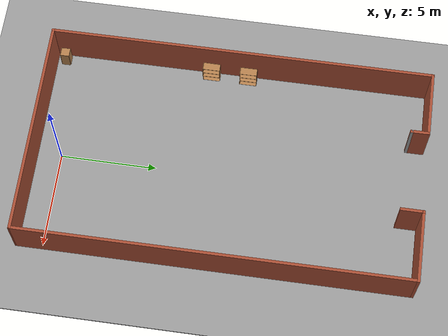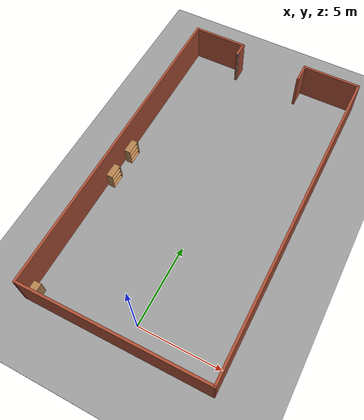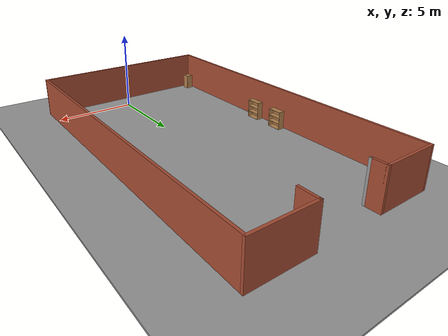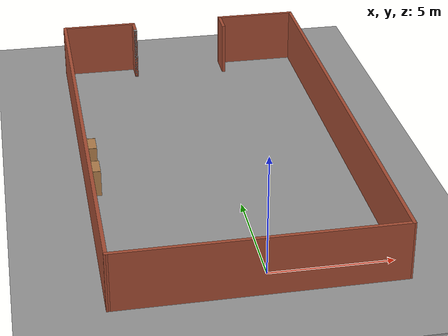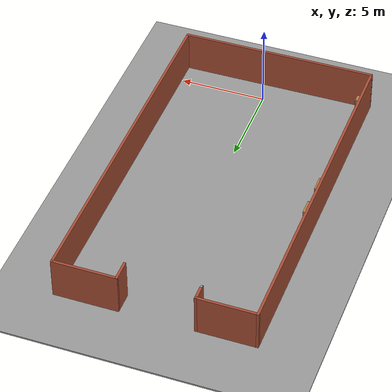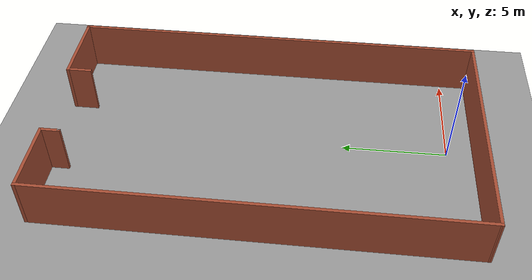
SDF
<sdf version="1.6">
 <world name="default">
  <light name="sun" type="directional">
   <pose>0 0 10 0 -0 0</pose>
   <diffuse>0.8 0.8 0.8 1</diffuse>
   <specular>0.2 0.2 0.2 1</specular>
   <attenuation>
    <range>1000</range>
    <constant>0.9</constant>
    <linear>0.01</linear>
    <quadratic>0.001</quadratic>
   </attenuation>
   <direction>-0.5 0.1 -0.9</direction>
  </light>
  <model name="ground_plane">
   <static>1</static>
   <link name="link">
    <collision name="collision">
     <geometry><plane><normal>0 0 1</normal><size>100 100</size></plane></geometry>
     <surface>
      <contact><collide_bitmask>65535</collide_bitmask></contact>
      <friction><ode><mu>100</mu><mu2>50</mu2></ode></friction>
     </surface>
    </collision>
    <visual name="visual">
     <cast_shadows>0</cast_shadows>
     <geometry><plane><normal>0 0 1</normal><size>100 100</size></plane></geometry>
     <material>
      <script><uri>file://media/materials/scripts/gazebo.material</uri><name>Gazebo/Grey</name></script>
     </material>
    </visual>
   </link>
  </model>
  <gravity>0 0 -9.8</gravity>
  <magnetic_field>6e-06 2.3e-05 -4.2e-05</magnetic_field>
  <atmosphere type="adiabatic"/>
  <physics name="default_physics" default="0" type="ode">
   <max_step_size>0.001</max_step_size>
   <real_time_factor>1</real_time_factor>
   <real_time_update_rate>1000</real_time_update_rate>
  </physics>
  <scene><ambient>0.4 0.4 0.4 1</ambient><background>0.7 0.7 0.7 1</background><shadows>1</shadows></scene>
  <audio><device>default</device></audio>
  <spherical_coordinates>
   <surface_model>EARTH_WGS84</surface_model>
   <latitude_deg>0</latitude_deg>
   <longitude_deg>0</longitude_deg>
   <elevation>0</elevation>
   <heading_deg>0</heading_deg>
  </spherical_coordinates>
  <model name="cafe2">
   <pose>-0.471159 8.71869 0 0 -0 0</pose>
   <link name="Wall_1">
    <collision name="Wall_1_Collision">
     <geometry><box><size>20.25 0.15 2.5</size></box></geometry>
     <pose>0 0 1.25 0 -0 0</pose>
    </collision>
    <visual name="Wall_1_Visual">
     <pose>0 0 1.25 0 -0 0</pose>
     <geometry><box><size>20.25 0.15 2.5</size></box></geometry>
     <material>
      <script><uri>file://media/materials/scripts/gazebo.material</uri><name>Gazebo/Bricks</name></script>
      <ambient>1 1 1 1</ambient>
     </material>
     <meta><layer>0</layer></meta>
    </visual>
    <pose>-5.63696 -0.029576 0 0 -0 -1.5708</pose>
   </link>
   <link name="Wall_10">
    <collision name="Wall_10_Collision">
     <geometry><box><size>1 0.15 2.5</size></box></geometry>
     <pose>0 0 1.25 0 -0 0</pose>
    </collision>
    <visual name="Wall_10_Visual">
     <pose>0 0 1.25 0 -0 0</pose>
     <geometry><box><size>1 0.15 2.5</size></box></geometry>
     <material>
      <script><uri>file://media/materials/scripts/gazebo.material</uri><name>Gazebo/Bricks</name></script>
      <ambient>1 1 1 1</ambient>
     </material>
     <meta><layer>0</layer></meta>
    </visual>
    <pose>-2.28696 9.59542 0 0 -0 -1.5708</pose>
   </link>
   <link name="Wall_11">
    <collision name="Wall_11_Collision">
     <geometry><box><size>0.15 0.15 2.5</size></box></geometry>
     <pose>0 0 1.25 0 -0 0</pose>
    </collision>
    <visual name="Wall_11_Visual">
     <pose>0 0 1.25 0 -0 0</pose>
     <geometry><box><size>0.15 0.15 2.5</size></box></geometry>
     <material>
      <script><uri>file://media/materials/scripts/gazebo.material</uri><name>Gazebo/Grey</name></script>
      <ambient>1 1 1 1</ambient>
     </material>
     <meta><layer>0</layer></meta>
    </visual>
    <pose>-2.28696 9.17042 0 0 -0 0</pose>
   </link>
   <link name="Wall_2">
    <collision name="Wall_2_Collision">
     <geometry><box><size>11.4241 0.15 2.5</size></box></geometry>
     <pose>0 0 1.25 0 -0 0</pose>
    </collision>
    <visual name="Wall_2_Visual">
     <pose>0 0 1.25 0 -0 0</pose>
     <geometry><box><size>11.4241 0.15 2.5</size></box></geometry>
     <material>
      <script><uri>file://media/materials/scripts/gazebo.material</uri><name>Gazebo/Bricks</name></script>
      <ambient>1 1 1 1</ambient>
     </material>
     <meta><layer>0</layer></meta>
    </visual>
    <pose>0 -10.0498 0 0 -0 0.005282</pose>
   </link>
   <link name="Wall_3">
    <collision name="Wall_3_Collision">
     <geometry><box><size>20.25 0.15 2.5</size></box></geometry>
     <pose>0 0 1.25 0 -0 0</pose>
    </collision>
    <visual name="Wall_3_Visual">
     <pose>0 0 1.25 0 -0 0</pose>
     <geometry><box><size>20.25 0.15 2.5</size></box></geometry>
     <material>
      <script><uri>file://media/materials/scripts/gazebo.material</uri><name>Gazebo/Bricks</name></script>
      <ambient>1 1 1 1</ambient>
     </material>
     <meta><layer>0</layer></meta>
    </visual>
    <pose>5.63696 0.02997 0 0 -0 1.5708</pose>
   </link>
   <link name="Wall_4">
    <collision name="Wall_4_Collision">
     <geometry><box><size>3.75 0.15 2.5</size></box></geometry>
     <pose>0 0 1.25 0 -0 0</pose>
    </collision>
    <visual name="Wall_4_Visual">
     <pose>0 0 1.25 0 -0 0</pose>
     <geometry><box><size>3.75 0.15 2.5</size></box></geometry>
     <material>
      <script><uri>file://media/materials/scripts/gazebo.material</uri><name>Gazebo/Bricks</name></script>
      <ambient>1 1 1 1</ambient>
     </material>
     <meta><layer>0</layer></meta>
    </visual>
    <pose>3.83696 10.08 0 0 -0 3.14159</pose>
   </link>
   <link name="Wall_5">
    <collision name="Wall_5_Collision">
     <geometry><box><size>1.25 0.15 2.5</size></box></geometry>
     <pose>0 0 1.25 0 -0 0</pose>
    </collision>
    <visual name="Wall_5_Visual">
     <pose>0 0 1.25 0 -0 0</pose>
     <geometry><box><size>1.25 0.15 2.5</size></box></geometry>
     <material>
      <script><uri>file://media/materials/scripts/gazebo.material</uri><name>Gazebo/Bricks</name></script>
      <ambient>1 1 1 1</ambient>
     </material>
     <meta><layer>0</layer></meta>
    </visual>
    <pose>2.03696 9.52997 0 0 -0 -1.5708</pose>
   </link>
   <link name="Wall_9">
    <collision name="Wall_9_Collision">
     <geometry><box><size>3.5 0.15 2.5</size></box></geometry>
     <pose>0 0 1.25 0 -0 0</pose>
    </collision>
    <visual name="Wall_9_Visual">
     <pose>0 0 1.25 0 -0 0</pose>
     <geometry><box><size>3.5 0.15 2.5</size></box></geometry>
     <material>
      <script><uri>file://media/materials/scripts/gazebo.material</uri><name>Gazebo/Bricks</name></script>
      <ambient>1 1 1 1</ambient>
     </material>
     <meta><layer>0</layer></meta>
    </visual>
    <pose>-3.96196 10.0204 0 0 -0 0</pose>
   </link>
   <static>1</static>
  </model>
  <model name="cabinet">
   <static>1</static>
   <link name="cabinet_bottom_plate">
    <inertial>
     <pose>0 0 -1 0 -0 0</pose>
     <inertia><ixx>2.05</ixx><ixy>0</ixy><ixz>0</ixz><iyy>2.05</iyy><iyz>0</iyz><izz>2.05</izz></inertia>
     <mass>25</mass>
    </inertial>
    <collision name="cabinet_bottom_plate_geom">
     <pose>0 0 0.01 0 -0 0</pose>
     <geometry><box><size>0.45 0.45 0.02</size></box></geometry>
    </collision>
    <visual name="cabinet_bottom_plate_geom_visual">
     <pose>0 0 0.01 0 -0 0</pose>
     <geometry><box><size>0.45 0.45 0.02</size></box></geometry>
     <material>
      <script><uri>file://media/materials/scripts/gazebo.material</uri><name>Gazebo/Wood</name></script>
     </material>
    </visual>
    <collision name="cabinet_bottom_plate_geom_cabinet_back_plate">
     <pose>0.235 0 0.51 0 -0 0</pose>
     <geometry><box><size>0.02 0.45 1.02</size></box></geometry>
    </collision>
    <visual name="cabinet_bottom_plate_geom_cabinet_back_plate_visual">
     <pose>0.235 0 0.51 0 -0 0</pose>
     <geometry><box><size>0.02 0.45 1.02</size></box></geometry>
     <material>
      <script><uri>file://media/materials/scripts/gazebo.material</uri><name>Gazebo/Wood</name></script>
     </material>
    </visual>
    <collision name="cabinet_bottom_plate_geom_cabinet_left_plate">
     <pose>0 0.235 0.51 0 -0 0</pose>
     <geometry><box><size>0.45 0.02 1.02</size></box></geometry>
    </collision>
    <visual name="cabinet_bottom_plate_geom_cabinet_left_plate_visual">
     <pose>0 0.235 0.51 0 -0 0</pose>
     <geometry><box><size>0.45 0.02 1.02</size></box></geometry>
     <material>
      <script><uri>file://media/materials/scripts/gazebo.material</uri><name>Gazebo/Wood</name></script>
     </material>
    </visual>
    <collision name="cabinet_bottom_plate_geom_cabinet_middle_plate">
     <pose>0 0 0.51 0 -0 0</pose>
     <geometry><box><size>0.45 0.45 0.02</size></box></geometry>
    </collision>
    <visual name="cabinet_bottom_plate_geom_cabinet_middle_plate_visual">
     <pose>0 0 0.51 0 -0 0</pose>
     <geometry><box><size>0.45 0.45 0.02</size></box></geometry>
     <material>
      <script><uri>file://media/materials/scripts/gazebo.material</uri><name>Gazebo/Wood</name></script>
     </material>
    </visual>
    <collision name="cabinet_bottom_plate_geom_cabinet_right_plate">
     <pose>0 -0.235 0.51 0 -0 0</pose>
     <geometry><box><size>0.45 0.02 1.02</size></box></geometry>
    </collision>
    <visual name="cabinet_bottom_plate_geom_cabinet_right_plate_visual">
     <pose>0 -0.235 0.51 0 -0 0</pose>
     <geometry><box><size>0.45 0.02 1.02</size></box></geometry>
     <material>
      <script><uri>file://media/materials/scripts/gazebo.material</uri><name>Gazebo/Wood</name></script>
     </material>
    </visual>
    <collision name="cabinet_bottom_plate_geom_cabinet_top_plate">
     <pose>0 0 1.01 0 -0 0</pose>
     <geometry><box><size>0.45 0.45 0.02</size></box></geometry>
    </collision>
    <visual name="cabinet_bottom_plate_geom_cabinet_top_plate_visual">
     <pose>0 0 1.01 0 -0 0</pose>
     <geometry><box><size>0.45 0.45 0.02</size></box></geometry>
     <material>
      <script><uri>file://media/materials/scripts/gazebo.material</uri><name>Gazebo/Wood</name></script>
     </material>
    </visual>
   </link>
   <pose>-5.68093 -0.808942 0 0 -0 0</pose>
  </model>
  <model name="bookshelf">
   <static>1</static>
   <link name="link">
    <inertial><mass>1</mass></inertial>
    <collision name="back">
     <pose>0 0.005 0.6 0 -0 0</pose>
     <geometry><box><size>0.9 0.01 1.2</size></box></geometry>
    </collision>
    <visual name="visual1">
     <pose>0 0.005 0.6 0 -0 0</pose>
     <geometry><box><size>0.9 0.01 1.2</size></box></geometry>
     <material>
      <script><uri>file://media/materials/scripts/gazebo.material</uri><name>Gazebo/Wood</name></script>
     </material>
    </visual>
    <collision name="left_side">
     <pose>0.45 -0.195 0.6 0 -0 0</pose>
     <geometry><box><size>0.02 0.4 1.2</size></box></geometry>
    </collision>
    <visual name="visual2">
     <pose>0.45 -0.195 0.6 0 -0 0</pose>
     <geometry><box><size>0.02 0.4 1.2</size></box></geometry>
     <material>
      <script><uri>file://media/materials/scripts/gazebo.material</uri><name>Gazebo/Wood</name></script>
     </material>
    </visual>
    <collision name="right_side">
     <pose>-0.45 -0.195 0.6 0 -0 0</pose>
     <geometry><box><size>0.02 0.4 1.2</size></box></geometry>
    </collision>
    <visual name="visual3">
     <pose>-0.45 -0.195 0.6 0 -0 0</pose>
     <geometry><box><size>0.02 0.4 1.2</size></box></geometry>
     <material>
      <script><uri>file://media/materials/scripts/gazebo.material</uri><name>Gazebo/Wood</name></script>
     </material>
    </visual>
    <collision name="bottom">
     <pose>0 -0.195 0.03 0 -0 0</pose>
     <geometry><box><size>0.88 0.4 0.06</size></box></geometry>
    </collision>
    <visual name="visual4">
     <pose>0 -0.195 0.03 0 -0 0</pose>
     <geometry><box><size>0.88 0.4 0.06</size></box></geometry>
     <material>
      <script><uri>file://media/materials/scripts/gazebo.material</uri><name>Gazebo/Wood</name></script>
     </material>
    </visual>
    <collision name="top">
     <pose>0 -0.195 1.19 0 -0 0</pose>
     <geometry><box><size>0.88 0.4 0.02</size></box></geometry>
    </collision>
    <visual name="visual5">
     <pose>0 -0.195 1.19 0 -0 0</pose>
     <geometry><box><size>0.88 0.4 0.02</size></box></geometry>
     <material>
      <script><uri>file://media/materials/scripts/gazebo.material</uri><name>Gazebo/Wood</name></script>
     </material>
    </visual>
    <collision name="low_shelf">
     <pose>0 -0.195 0.43 0 -0 0</pose>
     <geometry><box><size>0.88 0.4 0.02</size></box></geometry>
    </collision>
    <visual name="visual6">
     <pose>0 -0.195 0.43 0 -0 0</pose>
     <geometry><box><size>0.88 0.4 0.02</size></box></geometry>
     <material>
      <script><uri>file://media/materials/scripts/gazebo.material</uri><name>Gazebo/Wood</name></script>
     </material>
    </visual>
    <collision name="high_shelf">
     <pose>0 -0.195 0.8 0 -0 0</pose>
     <geometry><box><size>0.88 0.4 0.02</size></box></geometry>
    </collision>
    <visual name="visual7">
     <pose>0 -0.195 0.8 0 -0 0</pose>
     <geometry><box><size>0.88 0.4 0.02</size></box></geometry>
     <material>
      <script><uri>file://media/materials/scripts/gazebo.material</uri><name>Gazebo/Wood</name></script>
     </material>
    </visual>
   </link>
   <pose>-5.95191 7.15029 0 0 -0 1.56832</pose>
  </model>
  <model name="bookshelf_clone">
   <static>1</static>
   <link name="link">
    <inertial><mass>1</mass></inertial>
    <collision name="back">
     <pose>0 0.005 0.6 0 -0 0</pose>
     <geometry><box><size>0.9 0.01 1.2</size></box></geometry>
    </collision>
    <visual name="visual1">
     <pose>0 0.005 0.6 0 -0 0</pose>
     <geometry><box><size>0.9 0.01 1.2</size></box></geometry>
     <material>
      <script><uri>file://media/materials/scripts/gazebo.material</uri><name>Gazebo/Wood</name></script>
     </material>
    </visual>
    <collision name="left_side">
     <pose>0.45 -0.195 0.6 0 -0 0</pose>
     <geometry><box><size>0.02 0.4 1.2</size></box></geometry>
    </collision>
    <visual name="visual2">
     <pose>0.45 -0.195 0.6 0 -0 0</pose>
     <geometry><box><size>0.02 0.4 1.2</size></box></geometry>
     <material>
      <script><uri>file://media/materials/scripts/gazebo.material</uri><name>Gazebo/Wood</name></script>
     </material>
    </visual>
    <collision name="right_side">
     <pose>-0.45 -0.195 0.6 0 -0 0</pose>
     <geometry><box><size>0.02 0.4 1.2</size></box></geometry>
    </collision>
    <visual name="visual3">
     <pose>-0.45 -0.195 0.6 0 -0 0</pose>
     <geometry><box><size>0.02 0.4 1.2</size></box></geometry>
     <material>
      <script><uri>file://media/materials/scripts/gazebo.material</uri><name>Gazebo/Wood</name></script>
     </material>
    </visual>
    <collision name="bottom">
     <pose>0 -0.195 0.03 0 -0 0</pose>
     <geometry><box><size>0.88 0.4 0.06</size></box></geometry>
    </collision>
    <visual name="visual4">
     <pose>0 -0.195 0.03 0 -0 0</pose>
     <geometry><box><size>0.88 0.4 0.06</size></box></geometry>
     <material>
      <script><uri>file://media/materials/scripts/gazebo.material</uri><name>Gazebo/Wood</name></script>
     </material>
    </visual>
    <collision name="top">
     <pose>0 -0.195 1.19 0 -0 0</pose>
     <geometry><box><size>0.88 0.4 0.02</size></box></geometry>
    </collision>
    <visual name="visual5">
     <pose>0 -0.195 1.19 0 -0 0</pose>
     <geometry><box><size>0.88 0.4 0.02</size></box></geometry>
     <material>
      <script><uri>file://media/materials/scripts/gazebo.material</uri><name>Gazebo/Wood</name></script>
     </material>
    </visual>
    <collision name="low_shelf">
     <pose>0 -0.195 0.43 0 -0 0</pose>
     <geometry><box><size>0.88 0.4 0.02</size></box></geometry>
    </collision>
    <visual name="visual6">
     <pose>0 -0.195 0.43 0 -0 0</pose>
     <geometry><box><size>0.88 0.4 0.02</size></box></geometry>
     <material>
      <script><uri>file://media/materials/scripts/gazebo.material</uri><name>Gazebo/Wood</name></script>
     </material>
    </visual>
    <collision name="high_shelf">
     <pose>0 -0.195 0.8 0 -0 0</pose>
     <geometry><box><size>0.88 0.4 0.02</size></box></geometry>
    </collision>
    <visual name="visual7">
     <pose>0 -0.195 0.8 0 -0 0</pose>
     <geometry><box><size>0.88 0.4 0.02</size></box></geometry>
     <material>
      <script><uri>file://media/materials/scripts/gazebo.material</uri><name>Gazebo/Wood</name></script>
     </material>
    </visual>
   </link>
   <pose>-5.93098 9.14172 0 0 -0 1.56832</pose>
  </model>
  <model name="ground_plane_0">
   <static>1</static>
   <link name="link">
    <collision name="collision">
     <geometry><plane><normal>0 0 1</normal><size>100 100</size></plane></geometry>
     <surface><friction><ode><mu>100</mu><mu2>50</mu2></ode></friction></surface>
    </collision>
    <visual name="visual">
     <cast_shadows>0</cast_shadows>
     <geometry><plane><normal>0 0 1</normal><size>100 100</size></plane></geometry>
     <material>
      <script><uri>file://media/materials/scripts/gazebo.material</uri><name>Gazebo/Grey</name></script>
     </material>
    </visual>
   </link>
   <pose>-2.90112 -2.96112 0 0 -0 0</pose>
  </model>
 </world>
</sdf>
